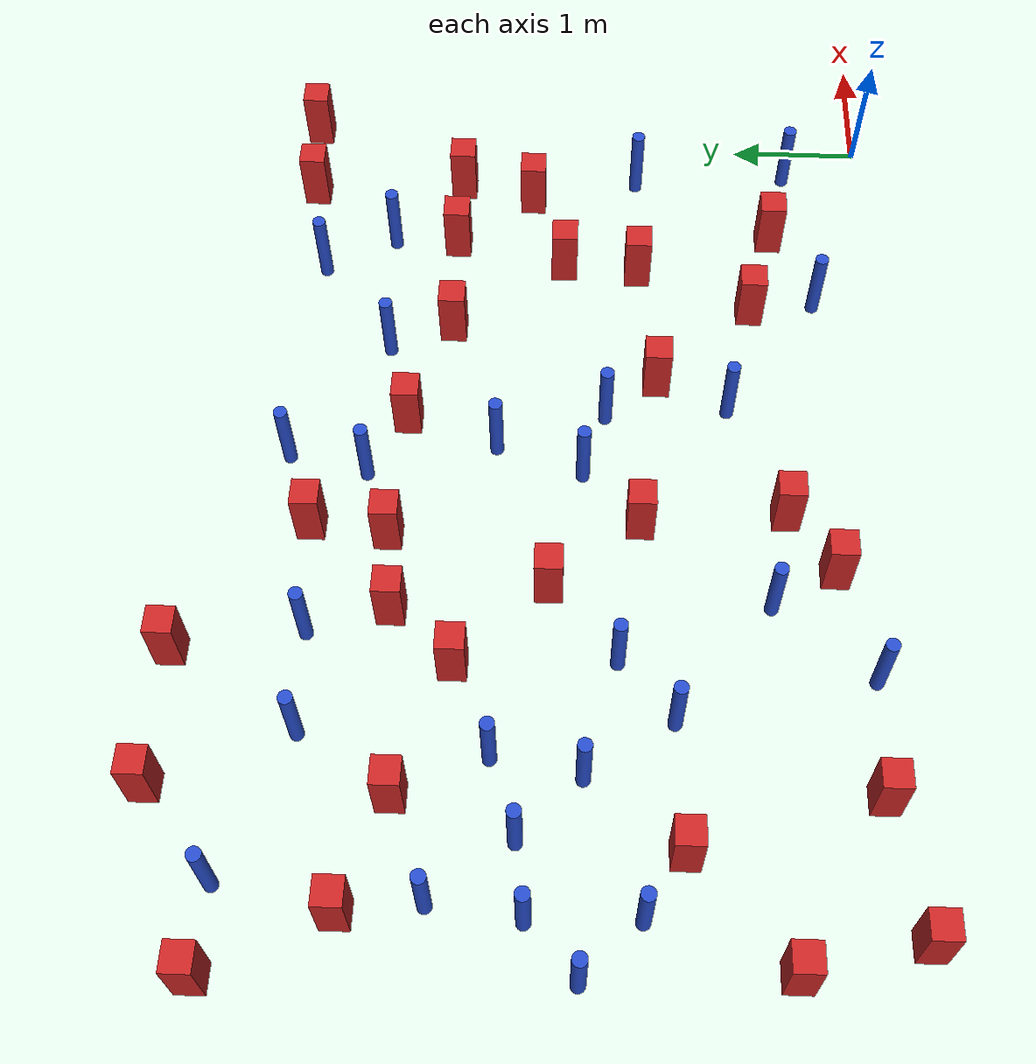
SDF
<sdf version="1.6">
 <model name="dense_21">
  <model name="square_post_obstacle0">
   <static>true</static>
   <pose>-3.86595991836 3.60557154821 1.91545236811e-07 -7.35059704564e-06 1.12565212e-07 2.39332434364e-05</pose>
   <link name="link">
    <pose>0 0 0.25 0 -0 0</pose>
    <inertial>
     <mass>100</mass>
     <inertia>
      <ixx>0.166667</ixx>
      <ixy>0</ixy>
      <ixz>0</ixz>
      <iyy>0.166667</iyy>
      <iyz>0</iyz>
      <izz>0.166667</izz>
     </inertia>
    </inertial>
    <collision name="collision"><geometry><box><size>.2 .2 .5</size></box></geometry></collision>
    <visual name="visual">
     <geometry><box><size>.2 .2 .5</size></box></geometry>
     <material>
      <script><name>Gazebo/Red</name><uri>file://media/materials/scripts/gazebo.material</uri></script>
     </material>
    </visual>
   </link>
  </model>
  <model name="pole_obstacle8">
   <static>true</static>
   <pose>-2.78137259823 2.06912645581 7.38925637345e-09 -8.47170692798e-08 1.24976764939e-08 -1.74513093025e-07</pose>
   <link name="link">
    <pose>0 0 0.3 0 -0 0</pose>
    <inertial>
     <mass>1</mass>
     <inertia><ixx>0.145833</ixx><ixy>0</ixy><ixz>0</ixz><iyy>0.145833</iyy><iyz>0</iyz><izz>0.125</izz></inertia>
    </inertial>
    <collision name="collision">
     <geometry><cylinder><radius>0.05</radius><length>.6</length></cylinder></geometry>
    </collision>
    <visual name="visual">
     <geometry><cylinder><radius>0.05</radius><length>.6</length></cylinder></geometry>
     <material>
      <script><name>Gazebo/Blue</name><uri>file://media/materials/scripts/gazebo.material</uri></script>
     </material>
    </visual>
   </link>
  </model>
  <model name="pole_obstacle11">
   <static>true</static>
   <pose>-0.41434500545 1.84749491106 7.38925637345e-09 -8.47170692798e-08 1.24976765025e-08 -1.74513093018e-07</pose>
   <link name="link">
    <pose>0 0 0.3 0 -0 0</pose>
    <inertial>
     <mass>1</mass>
     <inertia><ixx>0.145833</ixx><ixy>0</ixy><ixz>0</ixz><iyy>0.145833</iyy><iyz>0</iyz><izz>0.125</izz></inertia>
    </inertial>
    <collision name="collision">
     <geometry><cylinder><radius>0.05</radius><length>.6</length></cylinder></geometry>
    </collision>
    <visual name="visual">
     <geometry><cylinder><radius>0.05</radius><length>.6</length></cylinder></geometry>
     <material>
      <script><name>Gazebo/Blue</name><uri>file://media/materials/scripts/gazebo.material</uri></script>
     </material>
    </visual>
   </link>
  </model>
  <model name="square_post_obstacle22">
   <static>true</static>
   <pose>-5.79366301867 5.0144817991 1.91545236811e-07 -7.35059704564e-06 1.12565212e-07 2.39332434364e-05</pose>
   <link name="link">
    <pose>0 0 0.25 0 -0 0</pose>
    <inertial>
     <mass>100</mass>
     <inertia>
      <ixx>0.166667</ixx>
      <ixy>0</ixy>
      <ixz>0</ixz>
      <iyy>0.166667</iyy>
      <iyz>0</iyz>
      <izz>0.166667</izz>
     </inertia>
    </inertial>
    <collision name="collision"><geometry><box><size>.2 .2 .5</size></box></geometry></collision>
    <visual name="visual">
     <geometry><box><size>.2 .2 .5</size></box></geometry>
     <material>
      <script><name>Gazebo/Red</name><uri>file://media/materials/scripts/gazebo.material</uri></script>
     </material>
    </visual>
   </link>
  </model>
  <model name="pole_obstacle21">
   <static>true</static>
   <pose>-6.55348744013 1.78004425009 7.38925637345e-09 -8.471706928e-08 1.24976765134e-08 -1.74513093015e-07</pose>
   <link name="link">
    <pose>0 0 0.3 0 -0 0</pose>
    <inertial>
     <mass>1</mass>
     <inertia><ixx>0.145833</ixx><ixy>0</ixy><ixz>0</ixz><iyy>0.145833</iyy><iyz>0</iyz><izz>0.125</izz></inertia>
    </inertial>
    <collision name="collision">
     <geometry><cylinder><radius>0.05</radius><length>.6</length></cylinder></geometry>
    </collision>
    <visual name="visual">
     <geometry><cylinder><radius>0.05</radius><length>.6</length></cylinder></geometry>
     <material>
      <script><name>Gazebo/Blue</name><uri>file://media/materials/scripts/gazebo.material</uri></script>
     </material>
    </visual>
   </link>
  </model>
  <model name="square_post_obstacle33">
   <static>true</static>
   <pose>-0.62941892189 2.68996855208 1.91545236811e-07 -7.35059704564e-06 1.12565212e-07 2.39332434364e-05</pose>
   <link name="link">
    <pose>0 0 0.25 0 -0 0</pose>
    <inertial>
     <mass>100</mass>
     <inertia>
      <ixx>0.166667</ixx>
      <ixy>0</ixy>
      <ixz>0</ixz>
      <iyy>0.166667</iyy>
      <iyz>0</iyz>
      <izz>0.166667</izz>
     </inertia>
    </inertial>
    <collision name="collision"><geometry><box><size>.2 .2 .5</size></box></geometry></collision>
    <visual name="visual">
     <geometry><box><size>.2 .2 .5</size></box></geometry>
     <material>
      <script><name>Gazebo/Red</name><uri>file://media/materials/scripts/gazebo.material</uri></script>
     </material>
    </visual>
   </link>
  </model>
  <model name="pole_obstacle29">
   <static>true</static>
   <pose>-2.19478694647 3.73792876518 7.38925637345e-09 -8.47170692798e-08 1.24976764939e-08 -1.74513093025e-07</pose>
   <link name="link">
    <pose>0 0 0.3 0 -0 0</pose>
    <inertial>
     <mass>1</mass>
     <inertia><ixx>0.145833</ixx><ixy>0</ixy><ixz>0</ixz><iyy>0.145833</iyy><iyz>0</iyz><izz>0.125</izz></inertia>
    </inertial>
    <collision name="collision">
     <geometry><cylinder><radius>0.05</radius><length>.6</length></cylinder></geometry>
    </collision>
    <visual name="visual">
     <geometry><cylinder><radius>0.05</radius><length>.6</length></cylinder></geometry>
     <material>
      <script><name>Gazebo/Blue</name><uri>file://media/materials/scripts/gazebo.material</uri></script>
     </material>
    </visual>
   </link>
  </model>
  <model name="pole_obstacle32">
   <static>true</static>
   <pose>-1.10701310764 3.78948826834 7.38925637345e-09 -8.47170692799e-08 1.24976765053e-08 -1.74513093017e-07</pose>
   <link name="link">
    <pose>0 0 0.3 0 -0 0</pose>
    <inertial>
     <mass>1</mass>
     <inertia><ixx>0.145833</ixx><ixy>0</ixy><ixz>0</ixz><iyy>0.145833</iyy><iyz>0</iyz><izz>0.125</izz></inertia>
    </inertial>
    <collision name="collision">
     <geometry><cylinder><radius>0.05</radius><length>.6</length></cylinder></geometry>
    </collision>
    <visual name="visual">
     <geometry><cylinder><radius>0.05</radius><length>.6</length></cylinder></geometry>
     <material>
      <script><name>Gazebo/Blue</name><uri>file://media/materials/scripts/gazebo.material</uri></script>
     </material>
    </visual>
   </link>
  </model>
  <model name="square_post_obstacle38">
   <static>true</static>
   <pose>-6.63923074529 0.0228386776194 1.91545236811e-07 -7.35059704564e-06 1.12565212e-07 2.39332434364e-05</pose>
   <link name="link">
    <pose>0 0 0.25 0 -0 0</pose>
    <inertial>
     <mass>100</mass>
     <inertia>
      <ixx>0.166667</ixx>
      <ixy>0</ixy>
      <ixz>0</ixz>
      <iyy>0.166667</iyy>
      <iyz>0</iyz>
      <izz>0.166667</izz>
     </inertia>
    </inertial>
    <collision name="collision"><geometry><box><size>.2 .2 .5</size></box></geometry></collision>
    <visual name="visual">
     <geometry><box><size>.2 .2 .5</size></box></geometry>
     <material>
      <script><name>Gazebo/Red</name><uri>file://media/materials/scripts/gazebo.material</uri></script>
     </material>
    </visual>
   </link>
  </model>
  <model name="square_post_obstacle40">
   <static>true</static>
   <pose>-6.85556319978 0.843686910048 1.91545236811e-07 -7.35059704564e-06 1.12565212e-07 2.39332434364e-05</pose>
   <link name="link">
    <pose>0 0 0.25 0 -0 0</pose>
    <inertial>
     <mass>100</mass>
     <inertia>
      <ixx>0.166667</ixx>
      <ixy>0</ixy>
      <ixz>0</ixz>
      <iyy>0.166667</iyy>
      <iyz>0</iyz>
      <izz>0.166667</izz>
     </inertia>
    </inertial>
    <collision name="collision"><geometry><box><size>.2 .2 .5</size></box></geometry></collision>
    <visual name="visual">
     <geometry><box><size>.2 .2 .5</size></box></geometry>
     <material>
      <script><name>Gazebo/Red</name><uri>file://media/materials/scripts/gazebo.material</uri></script>
     </material>
    </visual>
   </link>
  </model>
  <model name="square_post_obstacle44">
   <static>true</static>
   <pose>-1.33822657588 2.41501504612 1.91545236811e-07 -7.35059704564e-06 1.12565212e-07 2.39332434364e-05</pose>
   <link name="link">
    <pose>0 0 0.25 0 -0 0</pose>
    <inertial>
     <mass>100</mass>
     <inertia>
      <ixx>0.166667</ixx>
      <ixy>0</ixy>
      <ixz>0</ixz>
      <iyy>0.166667</iyy>
      <iyz>0</iyz>
      <izz>0.166667</izz>
     </inertia>
    </inertial>
    <collision name="collision"><geometry><box><size>.2 .2 .5</size></box></geometry></collision>
    <visual name="visual">
     <geometry><box><size>.2 .2 .5</size></box></geometry>
     <material>
      <script><name>Gazebo/Red</name><uri>file://media/materials/scripts/gazebo.material</uri></script>
     </material>
    </visual>
   </link>
  </model>
  <model name="square_post_obstacle45">
   <static>true</static>
   <pose>-5.71500904995 0.223357686886 1.91545236811e-07 -7.35059704564e-06 1.12565212e-07 2.39332434364e-05</pose>
   <link name="link">
    <pose>0 0 0.25 0 -0 0</pose>
    <inertial>
     <mass>100</mass>
     <inertia>
      <ixx>0.166667</ixx>
      <ixy>0</ixy>
      <ixz>0</ixz>
      <iyy>0.166667</iyy>
      <iyz>0</iyz>
      <izz>0.166667</izz>
     </inertia>
    </inertial>
    <collision name="collision"><geometry><box><size>.2 .2 .5</size></box></geometry></collision>
    <visual name="visual">
     <geometry><box><size>.2 .2 .5</size></box></geometry>
     <material>
      <script><name>Gazebo/Red</name><uri>file://media/materials/scripts/gazebo.material</uri></script>
     </material>
    </visual>
   </link>
  </model>
  <model name="square_post_obstacle51">
   <static>true</static>
   <pose>-3.61294775484 0.757065930707 1.91545236811e-07 -7.35059704564e-06 1.12565212e-07 2.39332434364e-05</pose>
   <link name="link">
    <pose>0 0 0.25 0 -0 0</pose>
    <inertial>
     <mass>100</mass>
     <inertia>
      <ixx>0.166667</ixx>
      <ixy>0</ixy>
      <ixz>0</ixz>
      <iyy>0.166667</iyy>
      <iyz>0</iyz>
      <izz>0.166667</izz>
     </inertia>
    </inertial>
    <collision name="collision"><geometry><box><size>.2 .2 .5</size></box></geometry></collision>
    <visual name="visual">
     <geometry><box><size>.2 .2 .5</size></box></geometry>
     <material>
      <script><name>Gazebo/Red</name><uri>file://media/materials/scripts/gazebo.material</uri></script>
     </material>
    </visual>
   </link>
  </model>
  <model name="pole_obstacle54">
   <static>true</static>
   <pose>-0.306814135522 0.618455624702 7.38925637345e-09 -8.47170692799e-08 1.24976765033e-08 -1.74513093019e-07</pose>
   <link name="link">
    <pose>0 0 0.3 0 -0 0</pose>
    <inertial>
     <mass>1</mass>
     <inertia><ixx>0.145833</ixx><ixy>0</ixy><ixz>0</ixz><iyy>0.145833</iyy><iyz>0</iyz><izz>0.125</izz></inertia>
    </inertial>
    <collision name="collision">
     <geometry><cylinder><radius>0.05</radius><length>.6</length></cylinder></geometry>
    </collision>
    <visual name="visual">
     <geometry><cylinder><radius>0.05</radius><length>.6</length></cylinder></geometry>
     <material>
      <script><name>Gazebo/Blue</name><uri>file://media/materials/scripts/gazebo.material</uri></script>
     </material>
    </visual>
   </link>
  </model>
  <model name="square_post_obstacle60">
   <static>true</static>
   <pose>-2.86058432693 3.54175151519 1.91545236811e-07 -7.35059704564e-06 1.12565212e-07 2.39332434364e-05</pose>
   <link name="link">
    <pose>0 0 0.25 0 -0 0</pose>
    <inertial>
     <mass>100</mass>
     <inertia>
      <ixx>0.166667</ixx>
      <ixy>0</ixy>
      <ixz>0</ixz>
      <iyy>0.166667</iyy>
      <iyz>0</iyz>
      <izz>0.166667</izz>
     </inertia>
    </inertial>
    <collision name="collision"><geometry><box><size>.2 .2 .5</size></box></geometry></collision>
    <visual name="visual">
     <geometry><box><size>.2 .2 .5</size></box></geometry>
     <material>
      <script><name>Gazebo/Red</name><uri>file://media/materials/scripts/gazebo.material</uri></script>
     </material>
    </visual>
   </link>
  </model>
  <model name="pole_obstacle58">
   <static>true</static>
   <pose>-6.50039643059 3.14335249253 7.38925637345e-09 -8.47170692798e-08 1.24976764937e-08 -1.74513093023e-07</pose>
   <link name="link">
    <pose>0 0 0.3 0 -0 0</pose>
    <inertial>
     <mass>1</mass>
     <inertia><ixx>0.145833</ixx><ixy>0</ixy><ixz>0</ixz><iyy>0.145833</iyy><iyz>0</iyz><izz>0.125</izz></inertia>
    </inertial>
    <collision name="collision">
     <geometry><cylinder><radius>0.05</radius><length>.6</length></cylinder></geometry>
    </collision>
    <visual name="visual">
     <geometry><cylinder><radius>0.05</radius><length>.6</length></cylinder></geometry>
     <material>
      <script><name>Gazebo/Blue</name><uri>file://media/materials/scripts/gazebo.material</uri></script>
     </material>
    </visual>
   </link>
  </model>
  <model name="square_post_obstacle71">
   <static>true</static>
   <pose>-4.86969786584 3.07626681974 1.91545236811e-07 -7.35059704564e-06 1.12565212e-07 2.39332434364e-05</pose>
   <link name="link">
    <pose>0 0 0.25 0 -0 0</pose>
    <inertial>
     <mass>100</mass>
     <inertia>
      <ixx>0.166667</ixx>
      <ixy>0</ixy>
      <ixz>0</ixz>
      <iyy>0.166667</iyy>
      <iyz>0</iyz>
      <izz>0.166667</izz>
     </inertia>
    </inertial>
    <collision name="collision"><geometry><box><size>.2 .2 .5</size></box></geometry></collision>
    <visual name="visual">
     <geometry><box><size>.2 .2 .5</size></box></geometry>
     <material>
      <script><name>Gazebo/Red</name><uri>file://media/materials/scripts/gazebo.material</uri></script>
     </material>
    </visual>
   </link>
  </model>
  <model name="pole_obstacle89">
   <static>true</static>
   <pose>-6.07810839489 2.59719397885 7.38925637345e-09 -8.47170692798e-08 1.24976764937e-08 -1.74513093023e-07</pose>
   <link name="link">
    <pose>0 0 0.3 0 -0 0</pose>
    <inertial>
     <mass>1</mass>
     <inertia><ixx>0.145833</ixx><ixy>0</ixy><ixz>0</ixz><iyy>0.145833</iyy><iyz>0</iyz><izz>0.125</izz></inertia>
    </inertial>
    <collision name="collision">
     <geometry><cylinder><radius>0.05</radius><length>.6</length></cylinder></geometry>
    </collision>
    <visual name="visual">
     <geometry><cylinder><radius>0.05</radius><length>.6</length></cylinder></geometry>
     <material>
      <script><name>Gazebo/Blue</name><uri>file://media/materials/scripts/gazebo.material</uri></script>
     </material>
    </visual>
   </link>
  </model>
  <model name="pole_obstacle90">
   <static>true</static>
   <pose>-4.88486015319 0.196753515784 7.38925637345e-09 -8.471706928e-08 1.24976765151e-08 -1.74513093014e-07</pose>
   <link name="link">
    <pose>0 0 0.3 0 -0 0</pose>
    <inertial>
     <mass>1</mass>
     <inertia><ixx>0.145833</ixx><ixy>0</ixy><ixz>0</ixz><iyy>0.145833</iyy><iyz>0</iyz><izz>0.125</izz></inertia>
    </inertial>
    <collision name="collision">
     <geometry><cylinder><radius>0.05</radius><length>.6</length></cylinder></geometry>
    </collision>
    <visual name="visual">
     <geometry><cylinder><radius>0.05</radius><length>.6</length></cylinder></geometry>
     <material>
      <script><name>Gazebo/Blue</name><uri>file://media/materials/scripts/gazebo.material</uri></script>
     </material>
    </visual>
   </link>
  </model>
  <model name="pole_obstacle94">
   <static>true</static>
   <pose>-5.39001507004 4.07851157593 7.38925637345e-09 -8.47170692796e-08 1.24976764786e-08 -1.74513093032e-07</pose>
   <link name="link">
    <pose>0 0 0.3 0 -0 0</pose>
    <inertial>
     <mass>1</mass>
     <inertia><ixx>0.145833</ixx><ixy>0</ixy><ixz>0</ixz><iyy>0.145833</iyy><iyz>0</iyz><izz>0.125</izz></inertia>
    </inertial>
    <collision name="collision">
     <geometry><cylinder><radius>0.05</radius><length>.6</length></cylinder></geometry>
    </collision>
    <visual name="visual">
     <geometry><cylinder><radius>0.05</radius><length>.6</length></cylinder></geometry>
     <material>
      <script><name>Gazebo/Blue</name><uri>file://media/materials/scripts/gazebo.material</uri></script>
     </material>
    </visual>
   </link>
  </model>
  <model name="square_post_obstacle90">
   <static>true</static>
   <pose>-1.98172330749 3.25984380256 1.91545236811e-07 -7.35059704564e-06 1.12565212e-07 2.39332434364e-05</pose>
   <link name="link">
    <pose>0 0 0.25 0 -0 0</pose>
    <inertial>
     <mass>100</mass>
     <inertia>
      <ixx>0.166667</ixx>
      <ixy>0</ixy>
      <ixz>0</ixz>
      <iyy>0.166667</iyy>
      <iyz>0</iyz>
      <izz>0.166667</izz>
     </inertia>
    </inertial>
    <collision name="collision"><geometry><box><size>.2 .2 .5</size></box></geometry></collision>
    <visual name="visual">
     <geometry><box><size>.2 .2 .5</size></box></geometry>
     <material>
      <script><name>Gazebo/Red</name><uri>file://media/materials/scripts/gazebo.material</uri></script>
     </material>
    </visual>
   </link>
  </model>
  <model name="pole_obstacle107">
   <static>true</static>
   <pose>-4.34851654881 0.886905893965 7.38925637345e-09 -8.47170692799e-08 1.24976765038e-08 -1.74513093018e-07</pose>
   <link name="link">
    <pose>0 0 0.3 0 -0 0</pose>
    <inertial>
     <mass>1</mass>
     <inertia><ixx>0.145833</ixx><ixy>0</ixy><ixz>0</ixz><iyy>0.145833</iyy><iyz>0</iyz><izz>0.125</izz></inertia>
    </inertial>
    <collision name="collision">
     <geometry><cylinder><radius>0.05</radius><length>.6</length></cylinder></geometry>
    </collision>
    <visual name="visual">
     <geometry><cylinder><radius>0.05</radius><length>.6</length></cylinder></geometry>
     <material>
      <script><name>Gazebo/Blue</name><uri>file://media/materials/scripts/gazebo.material</uri></script>
     </material>
    </visual>
   </link>
  </model>
  <model name="square_post_obstacle95">
   <static>true</static>
   <pose>-3.71858230035 1.80594368579 1.91545236811e-07 -7.35059704564e-06 1.12565212e-07 2.39332434364e-05</pose>
   <link name="link">
    <pose>0 0 0.25 0 -0 0</pose>
    <inertial>
     <mass>100</mass>
     <inertia>
      <ixx>0.166667</ixx>
      <ixy>0</ixy>
      <ixz>0</ixz>
      <iyy>0.166667</iyy>
      <iyz>0</iyz>
      <izz>0.166667</izz>
     </inertia>
    </inertial>
    <collision name="collision"><geometry><box><size>.2 .2 .5</size></box></geometry></collision>
    <visual name="visual">
     <geometry><box><size>.2 .2 .5</size></box></geometry>
     <material>
      <script><name>Gazebo/Red</name><uri>file://media/materials/scripts/gazebo.material</uri></script>
     </material>
    </visual>
   </link>
  </model>
  <model name="pole_obstacle109">
   <static>true</static>
   <pose>-5.23086947961 1.56839969151 7.38925637345e-09 -8.471706928e-08 1.24976765134e-08 -1.74513093015e-07</pose>
   <link name="link">
    <pose>0 0 0.3 0 -0 0</pose>
    <inertial>
     <mass>1</mass>
     <inertia><ixx>0.145833</ixx><ixy>0</ixy><ixz>0</ixz><iyy>0.145833</iyy><iyz>0</iyz><izz>0.125</izz></inertia>
    </inertial>
    <collision name="collision">
     <geometry><cylinder><radius>0.05</radius><length>.6</length></cylinder></geometry>
    </collision>
    <visual name="visual">
     <geometry><cylinder><radius>0.05</radius><length>.6</length></cylinder></geometry>
     <material>
      <script><name>Gazebo/Blue</name><uri>file://media/materials/scripts/gazebo.material</uri></script>
     </material>
    </visual>
   </link>
  </model>
  <model name="square_post_obstacle97">
   <static>true</static>
   <pose>-0.485385563064 3.2686350951 1.91545236811e-07 -7.35059704564e-06 1.12565212e-07 2.39332434364e-05</pose>
   <link name="link">
    <pose>0 0 0.25 0 -0 0</pose>
    <inertial>
     <mass>100</mass>
     <inertia>
      <ixx>0.166667</ixx>
      <ixy>0</ixy>
      <ixz>0</ixz>
      <iyy>0.166667</iyy>
      <iyz>0</iyz>
      <izz>0.166667</izz>
     </inertia>
    </inertial>
    <collision name="collision"><geometry><box><size>.2 .2 .5</size></box></geometry></collision>
    <visual name="visual">
     <geometry><box><size>.2 .2 .5</size></box></geometry>
     <material>
      <script><name>Gazebo/Red</name><uri>file://media/materials/scripts/gazebo.material</uri></script>
     </material>
    </visual>
   </link>
  </model>
  <model name="pole_obstacle124">
   <static>true</static>
   <pose>-5.64075008194 2.17287120768 7.38925637345e-09 -8.47170692798e-08 1.24976764937e-08 -1.74513093023e-07</pose>
   <link name="link">
    <pose>0 0 0.3 0 -0 0</pose>
    <inertial>
     <mass>1</mass>
     <inertia><ixx>0.145833</ixx><ixy>0</ixy><ixz>0</ixz><iyy>0.145833</iyy><iyz>0</iyz><izz>0.125</izz></inertia>
    </inertial>
    <collision name="collision">
     <geometry><cylinder><radius>0.05</radius><length>.6</length></cylinder></geometry>
    </collision>
    <visual name="visual">
     <geometry><cylinder><radius>0.05</radius><length>.6</length></cylinder></geometry>
     <material>
      <script><name>Gazebo/Blue</name><uri>file://media/materials/scripts/gazebo.material</uri></script>
     </material>
    </visual>
   </link>
  </model>
  <model name="pole_obstacle127">
   <static>true</static>
   <pose>-5.52030269205 2.79116916985 7.38925637345e-09 -8.47170692798e-08 1.24976764937e-08 -1.74513093023e-07</pose>
   <link name="link">
    <pose>0 0 0.3 0 -0 0</pose>
    <inertial>
     <mass>1</mass>
     <inertia><ixx>0.145833</ixx><ixy>0</ixy><ixz>0</ixz><iyy>0.145833</iyy><iyz>0</iyz><izz>0.125</izz></inertia>
    </inertial>
    <collision name="collision">
     <geometry><cylinder><radius>0.05</radius><length>.6</length></cylinder></geometry>
    </collision>
    <visual name="visual">
     <geometry><cylinder><radius>0.05</radius><length>.6</length></cylinder></geometry>
     <material>
      <script><name>Gazebo/Blue</name><uri>file://media/materials/scripts/gazebo.material</uri></script>
     </material>
    </visual>
   </link>
  </model>
  <model name="pole_obstacle132">
   <static>true</static>
   <pose>-3.21013823152 4.39571737718 7.38925637345e-09 -8.47170692798e-08 1.24976765033e-08 -1.74513093019e-07</pose>
   <link name="link">
    <pose>0 0 0.3 0 -0 0</pose>
    <inertial>
     <mass>1</mass>
     <inertia><ixx>0.145833</ixx><ixy>0</ixy><ixz>0</ixz><iyy>0.145833</iyy><iyz>0</iyz><izz>0.125</izz></inertia>
    </inertial>
    <collision name="collision">
     <geometry><cylinder><radius>0.05</radius><length>.6</length></cylinder></geometry>
    </collision>
    <visual name="visual">
     <geometry><cylinder><radius>0.05</radius><length>.6</length></cylinder></geometry>
     <material>
      <script><name>Gazebo/Blue</name><uri>file://media/materials/scripts/gazebo.material</uri></script>
     </material>
    </visual>
   </link>
  </model>
  <model name="pole_obstacle135">
   <static>true</static>
   <pose>-3.29960236184 2.22583665025 7.38925637345e-09 -8.471706928e-08 1.24976765098e-08 -1.74513093016e-07</pose>
   <link name="link">
    <pose>0 0 0.3 0 -0 0</pose>
    <inertial>
     <mass>1</mass>
     <inertia><ixx>0.145833</ixx><ixy>0</ixy><ixz>0</ixz><iyy>0.145833</iyy><iyz>0</iyz><izz>0.125</izz></inertia>
    </inertial>
    <collision name="collision">
     <geometry><cylinder><radius>0.05</radius><length>.6</length></cylinder></geometry>
    </collision>
    <visual name="visual">
     <geometry><cylinder><radius>0.05</radius><length>.6</length></cylinder></geometry>
     <material>
      <script><name>Gazebo/Blue</name><uri>file://media/materials/scripts/gazebo.material</uri></script>
     </material>
    </visual>
   </link>
  </model>
  <model name="square_post_obstacle118">
   <static>true</static>
   <pose>-4.82078689809 5.00561105637 1.91545236811e-07 -7.35059704564e-06 1.12565212e-07 2.39332434364e-05</pose>
   <link name="link">
    <pose>0 0 0.25 0 -0 0</pose>
    <inertial>
     <mass>100</mass>
     <inertia>
      <ixx>0.166667</ixx>
      <ixy>0</ixy>
      <ixz>0</ixz>
      <iyy>0.166667</iyy>
      <iyz>0</iyz>
      <izz>0.166667</izz>
     </inertia>
    </inertial>
    <collision name="collision"><geometry><box><size>.2 .2 .5</size></box></geometry></collision>
    <visual name="visual">
     <geometry><box><size>.2 .2 .5</size></box></geometry>
     <material>
      <script><name>Gazebo/Red</name><uri>file://media/materials/scripts/gazebo.material</uri></script>
     </material>
    </visual>
   </link>
  </model>
  <model name="square_post_obstacle119">
   <static>true</static>
   <pose>-3.80180215612 4.16481056923 1.91545236811e-07 -7.35059704564e-06 1.12565212e-07 2.39332434364e-05</pose>
   <link name="link">
    <pose>0 0 0.25 0 -0 0</pose>
    <inertial>
     <mass>100</mass>
     <inertia>
      <ixx>0.166667</ixx>
      <ixy>0</ixy>
      <ixz>0</ixz>
      <iyy>0.166667</iyy>
      <iyz>0</iyz>
      <izz>0.166667</izz>
     </inertia>
    </inertial>
    <collision name="collision"><geometry><box><size>.2 .2 .5</size></box></geometry></collision>
    <visual name="visual">
     <geometry><box><size>.2 .2 .5</size></box></geometry>
     <material>
      <script><name>Gazebo/Red</name><uri>file://media/materials/scripts/gazebo.material</uri></script>
     </material>
    </visual>
   </link>
  </model>
  <model name="square_post_obstacle120">
   <static>true</static>
   <pose>-4.46540278607 3.53071237787 1.91545236811e-07 -7.35059704564e-06 1.12565212e-07 2.39332434364e-05</pose>
   <link name="link">
    <pose>0 0 0.25 0 -0 0</pose>
    <inertial>
     <mass>100</mass>
     <inertia>
      <ixx>0.166667</ixx>
      <ixy>0</ixy>
      <ixz>0</ixz>
      <iyy>0.166667</iyy>
      <iyz>0</iyz>
      <izz>0.166667</izz>
     </inertia>
    </inertial>
    <collision name="collision"><geometry><box><size>.2 .2 .5</size></box></geometry></collision>
    <visual name="visual">
     <geometry><box><size>.2 .2 .5</size></box></geometry>
     <material>
      <script><name>Gazebo/Red</name><uri>file://media/materials/scripts/gazebo.material</uri></script>
     </material>
    </visual>
   </link>
  </model>
  <model name="square_post_obstacle126">
   <static>true</static>
   <pose>-1.7434710537 0.953801590971 1.91545236811e-07 -7.35059704564e-06 1.12565212e-07 2.39332434364e-05</pose>
   <link name="link">
    <pose>0 0 0.25 0 -0 0</pose>
    <inertial>
     <mass>100</mass>
     <inertia>
      <ixx>0.166667</ixx>
      <ixy>0</ixy>
      <ixz>0</ixz>
      <iyy>0.166667</iyy>
      <iyz>0</iyz>
      <izz>0.166667</izz>
     </inertia>
    </inertial>
    <collision name="collision"><geometry><box><size>.2 .2 .5</size></box></geometry></collision>
    <visual name="visual">
     <geometry><box><size>.2 .2 .5</size></box></geometry>
     <material>
      <script><name>Gazebo/Red</name><uri>file://media/materials/scripts/gazebo.material</uri></script>
     </material>
    </visual>
   </link>
  </model>
  <model name="pole_obstacle146">
   <static>true</static>
   <pose>-4.80376832508 1.95586070441 7.38925637345e-09 -8.471706928e-08 1.24976765177e-08 -1.74513093012e-07</pose>
   <link name="link">
    <pose>0 0 0.3 0 -0 0</pose>
    <inertial>
     <mass>1</mass>
     <inertia><ixx>0.145833</ixx><ixy>0</ixy><ixz>0</ixz><iyy>0.145833</iyy><iyz>0</iyz><izz>0.125</izz></inertia>
    </inertial>
    <collision name="collision">
     <geometry><cylinder><radius>0.05</radius><length>.6</length></cylinder></geometry>
    </collision>
    <visual name="visual">
     <geometry><cylinder><radius>0.05</radius><length>.6</length></cylinder></geometry>
     <material>
      <script><name>Gazebo/Blue</name><uri>file://media/materials/scripts/gazebo.material</uri></script>
     </material>
    </visual>
   </link>
  </model>
  <model name="pole_obstacle156">
   <static>true</static>
   <pose>-6.41359265644 4.494106197 7.38925637345e-09 -8.47170692796e-08 1.24976764786e-08 -1.74513093032e-07</pose>
   <link name="link">
    <pose>0 0 0.3 0 -0 0</pose>
    <inertial>
     <mass>1</mass>
     <inertia><ixx>0.145833</ixx><ixy>0</ixy><ixz>0</ixz><iyy>0.145833</iyy><iyz>0</iyz><izz>0.125</izz></inertia>
    </inertial>
    <collision name="collision">
     <geometry><cylinder><radius>0.05</radius><length>.6</length></cylinder></geometry>
    </collision>
    <visual name="visual">
     <geometry><cylinder><radius>0.05</radius><length>.6</length></cylinder></geometry>
     <material>
      <script><name>Gazebo/Blue</name><uri>file://media/materials/scripts/gazebo.material</uri></script>
     </material>
    </visual>
   </link>
  </model>
  <model name="square_post_obstacle150">
   <static>true</static>
   <pose>0.104401019979 4.53678349561 1.91545236811e-07 -7.35059704564e-06 1.12565212e-07 2.39332434364e-05</pose>
   <link name="link">
    <pose>0 0 0.25 0 -0 0</pose>
    <inertial>
     <mass>100</mass>
     <inertia>
      <ixx>0.166667</ixx>
      <ixy>0</ixy>
      <ixz>0</ixz>
      <iyy>0.166667</iyy>
      <iyz>0</iyz>
      <izz>0.166667</izz>
     </inertia>
    </inertial>
    <collision name="collision"><geometry><box><size>.2 .2 .5</size></box></geometry></collision>
    <visual name="visual">
     <geometry><box><size>.2 .2 .5</size></box></geometry>
     <material>
      <script><name>Gazebo/Red</name><uri>file://media/materials/scripts/gazebo.material</uri></script>
     </material>
    </visual>
   </link>
  </model>
  <model name="square_post_obstacle156">
   <static>true</static>
   <pose>-6.12395830026 1.5156468879 1.91545236811e-07 -7.35059704564e-06 1.12565212e-07 2.39332434364e-05</pose>
   <link name="link">
    <pose>0 0 0.25 0 -0 0</pose>
    <inertial>
     <mass>100</mass>
     <inertia>
      <ixx>0.166667</ixx>
      <ixy>0</ixy>
      <ixz>0</ixz>
      <iyy>0.166667</iyy>
      <iyz>0</iyz>
      <izz>0.166667</izz>
     </inertia>
    </inertial>
    <collision name="collision"><geometry><box><size>.2 .2 .5</size></box></geometry></collision>
    <visual name="visual">
     <geometry><box><size>.2 .2 .5</size></box></geometry>
     <material>
      <script><name>Gazebo/Red</name><uri>file://media/materials/scripts/gazebo.material</uri></script>
     </material>
    </visual>
   </link>
  </model>
  <model name="square_post_obstacle157">
   <static>true</static>
   <pose>-6.57234840411 3.68802549817 1.91545236811e-07 -7.35059704564e-06 1.12565212e-07 2.39332434364e-05</pose>
   <link name="link">
    <pose>0 0 0.25 0 -0 0</pose>
    <inertial>
     <mass>100</mass>
     <inertia>
      <ixx>0.166667</ixx>
      <ixy>0</ixy>
      <ixz>0</ixz>
      <iyy>0.166667</iyy>
      <iyz>0</iyz>
      <izz>0.166667</izz>
     </inertia>
    </inertial>
    <collision name="collision"><geometry><box><size>.2 .2 .5</size></box></geometry></collision>
    <visual name="visual">
     <geometry><box><size>.2 .2 .5</size></box></geometry>
     <material>
      <script><name>Gazebo/Red</name><uri>file://media/materials/scripts/gazebo.material</uri></script>
     </material>
    </visual>
   </link>
  </model>
  <model name="square_post_obstacle159">
   <static>true</static>
   <pose>-4.07350914103 0.431229910862 1.91545236811e-07 -7.35059704564e-06 1.12565212e-07 2.39332434364e-05</pose>
   <link name="link">
    <pose>0 0 0.25 0 -0 0</pose>
    <inertial>
     <mass>100</mass>
     <inertia>
      <ixx>0.166667</ixx>
      <ixy>0</ixy>
      <ixz>0</ixz>
      <iyy>0.166667</iyy>
      <iyz>0</iyz>
      <izz>0.166667</izz>
     </inertia>
    </inertial>
    <collision name="collision"><geometry><box><size>.2 .2 .5</size></box></geometry></collision>
    <visual name="visual">
     <geometry><box><size>.2 .2 .5</size></box></geometry>
     <material>
      <script><name>Gazebo/Red</name><uri>file://media/materials/scripts/gazebo.material</uri></script>
     </material>
    </visual>
   </link>
  </model>
  <model name="square_post_obstacle164">
   <static>true</static>
   <pose>-6.98697210703 4.5192453092 1.91545236811e-07 -7.35059704564e-06 1.12565212e-07 2.39332434364e-05</pose>
   <link name="link">
    <pose>0 0 0.25 0 -0 0</pose>
    <inertial>
     <mass>100</mass>
     <inertia>
      <ixx>0.166667</ixx>
      <ixy>0</ixy>
      <ixz>0</ixz>
      <iyy>0.166667</iyy>
      <iyz>0</iyz>
      <izz>0.166667</izz>
     </inertia>
    </inertial>
    <collision name="collision"><geometry><box><size>.2 .2 .5</size></box></geometry></collision>
    <visual name="visual">
     <geometry><box><size>.2 .2 .5</size></box></geometry>
     <material>
      <script><name>Gazebo/Red</name><uri>file://media/materials/scripts/gazebo.material</uri></script>
     </material>
    </visual>
   </link>
  </model>
  <model name="pole_obstacle178">
   <static>true</static>
   <pose>-1.41124363965 4.3278385688 7.38925637345e-09 -8.47170692799e-08 1.24976765033e-08 -1.74513093018e-07</pose>
   <link name="link">
    <pose>0 0 0.3 0 -0 0</pose>
    <inertial>
     <mass>1</mass>
     <inertia><ixx>0.145833</ixx><ixy>0</ixy><ixz>0</ixz><iyy>0.145833</iyy><iyz>0</iyz><izz>0.125</izz></inertia>
    </inertial>
    <collision name="collision">
     <geometry><cylinder><radius>0.05</radius><length>.6</length></cylinder></geometry>
    </collision>
    <visual name="visual">
     <geometry><cylinder><radius>0.05</radius><length>.6</length></cylinder></geometry>
     <material>
      <script><name>Gazebo/Blue</name><uri>file://media/materials/scripts/gazebo.material</uri></script>
     </material>
    </visual>
   </link>
  </model>
  <model name="square_post_obstacle174">
   <static>true</static>
   <pose>-0.588597129025 4.48532298802 1.91545236811e-07 -7.35059704564e-06 1.12565212e-07 2.39332434364e-05</pose>
   <link name="link">
    <pose>0 0 0.25 0 -0 0</pose>
    <inertial>
     <mass>100</mass>
     <inertia>
      <ixx>0.166667</ixx>
      <ixy>0</ixy>
      <ixz>0</ixz>
      <iyy>0.166667</iyy>
      <iyz>0</iyz>
      <izz>0.166667</izz>
     </inertia>
    </inertial>
    <collision name="collision"><geometry><box><size>.2 .2 .5</size></box></geometry></collision>
    <visual name="visual">
     <geometry><box><size>.2 .2 .5</size></box></geometry>
     <material>
      <script><name>Gazebo/Red</name><uri>file://media/materials/scripts/gazebo.material</uri></script>
     </material>
    </visual>
   </link>
  </model>
  <model name="square_post_obstacle177">
   <static>true</static>
   <pose>-1.38103212987 1.83550497154 1.91545236811e-07 -7.35059704564e-06 1.12565212e-07 2.39332434364e-05</pose>
   <link name="link">
    <pose>0 0 0.25 0 -0 0</pose>
    <inertial>
     <mass>100</mass>
     <inertia>
      <ixx>0.166667</ixx>
      <ixy>0</ixy>
      <ixz>0</ixz>
      <iyy>0.166667</iyy>
      <iyz>0</iyz>
      <izz>0.166667</izz>
     </inertia>
    </inertial>
    <collision name="collision"><geometry><box><size>.2 .2 .5</size></box></geometry></collision>
    <visual name="visual">
     <geometry><box><size>.2 .2 .5</size></box></geometry>
     <material>
      <script><name>Gazebo/Red</name><uri>file://media/materials/scripts/gazebo.material</uri></script>
     </material>
    </visual>
   </link>
  </model>
  <model name="square_post_obstacle180">
   <static>true</static>
   <pose>-1.11863178164 3.27913475068 1.91545236811e-07 -7.35059704564e-06 1.12565212e-07 2.39332434364e-05</pose>
   <link name="link">
    <pose>0 0 0.25 0 -0 0</pose>
    <inertial>
     <mass>100</mass>
     <inertia>
      <ixx>0.166667</ixx>
      <ixy>0</ixy>
      <ixz>0</ixz>
      <iyy>0.166667</iyy>
      <iyz>0</iyz>
      <izz>0.166667</izz>
     </inertia>
    </inertial>
    <collision name="collision"><geometry><box><size>.2 .2 .5</size></box></geometry></collision>
    <visual name="visual">
     <geometry><box><size>.2 .2 .5</size></box></geometry>
     <material>
      <script><name>Gazebo/Red</name><uri>file://media/materials/scripts/gazebo.material</uri></script>
     </material>
    </visual>
   </link>
  </model>
  <model name="square_post_obstacle182">
   <static>true</static>
   <pose>-2.45948258006 1.68646048146 1.91545236811e-07 -7.35059704564e-06 1.12565212e-07 2.39332434364e-05</pose>
   <link name="link">
    <pose>0 0 0.25 0 -0 0</pose>
    <inertial>
     <mass>100</mass>
     <inertia>
      <ixx>0.166667</ixx>
      <ixy>0</ixy>
      <ixz>0</ixz>
      <iyy>0.166667</iyy>
      <iyz>0</iyz>
      <izz>0.166667</izz>
     </inertia>
    </inertial>
    <collision name="collision"><geometry><box><size>.2 .2 .5</size></box></geometry></collision>
    <visual name="visual">
     <geometry><box><size>.2 .2 .5</size></box></geometry>
     <material>
      <script><name>Gazebo/Red</name><uri>file://media/materials/scripts/gazebo.material</uri></script>
     </material>
    </visual>
   </link>
  </model>
  <model name="square_post_obstacle187">
   <static>true</static>
   <pose>-0.9861824438 0.770317396739 1.91545236811e-07 -7.35059704564e-06 1.12565212e-07 2.39332434364e-05</pose>
   <link name="link">
    <pose>0 0 0.25 0 -0 0</pose>
    <inertial>
     <mass>100</mass>
     <inertia>
      <ixx>0.166667</ixx>
      <ixy>0</ixy>
      <ixz>0</ixz>
      <iyy>0.166667</iyy>
      <iyz>0</iyz>
      <izz>0.166667</izz>
     </inertia>
    </inertial>
    <collision name="collision"><geometry><box><size>.2 .2 .5</size></box></geometry></collision>
    <visual name="visual">
     <geometry><box><size>.2 .2 .5</size></box></geometry>
     <material>
      <script><name>Gazebo/Red</name><uri>file://media/materials/scripts/gazebo.material</uri></script>
     </material>
    </visual>
   </link>
  </model>
  <model name="square_post_obstacle193">
   <static>true</static>
   <pose>-5.80840645989 3.41423138902 1.91545236811e-07 -7.35059704564e-06 1.12565212e-07 2.39332434364e-05</pose>
   <link name="link">
    <pose>0 0 0.25 0 -0 0</pose>
    <inertial>
     <mass>100</mass>
     <inertia>
      <ixx>0.166667</ixx>
      <ixy>0</ixy>
      <ixz>0</ixz>
      <iyy>0.166667</iyy>
      <iyz>0</iyz>
      <izz>0.166667</izz>
     </inertia>
    </inertial>
    <collision name="collision"><geometry><box><size>.2 .2 .5</size></box></geometry></collision>
    <visual name="visual">
     <geometry><box><size>.2 .2 .5</size></box></geometry>
     <material>
      <script><name>Gazebo/Red</name><uri>file://media/materials/scripts/gazebo.material</uri></script>
     </material>
    </visual>
   </link>
  </model>
  <model name="square_post_obstacle198">
   <static>true</static>
   <pose>-4.25337391084 2.44499710554 1.91545236811e-07 -7.35059704564e-06 1.12565212e-07 2.39332434364e-05</pose>
   <link name="link">
    <pose>0 0 0.25 0 -0 0</pose>
    <inertial>
     <mass>100</mass>
     <inertia>
      <ixx>0.166667</ixx>
      <ixy>0</ixy>
      <ixz>0</ixz>
      <iyy>0.166667</iyy>
      <iyz>0</iyz>
      <izz>0.166667</izz>
     </inertia>
    </inertial>
    <collision name="collision"><geometry><box><size>.2 .2 .5</size></box></geometry></collision>
    <visual name="visual">
     <geometry><box><size>.2 .2 .5</size></box></geometry>
     <material>
      <script><name>Gazebo/Red</name><uri>file://media/materials/scripts/gazebo.material</uri></script>
     </material>
    </visual>
   </link>
  </model>
  <model name="pole_obstacle192">
   <static>true</static>
   <pose>-4.65066480137 4.10591743107 7.38925637345e-09 -8.47170692796e-08 1.24976764786e-08 -1.74513093032e-07</pose>
   <link name="link">
    <pose>0 0 0.3 0 -0 0</pose>
    <inertial>
     <mass>1</mass>
     <inertia><ixx>0.145833</ixx><ixy>0</ixy><ixz>0</ixz><iyy>0.145833</iyy><iyz>0</iyz><izz>0.125</izz></inertia>
    </inertial>
    <collision name="collision">
     <geometry><cylinder><radius>0.05</radius><length>.6</length></cylinder></geometry>
    </collision>
    <visual name="visual">
     <geometry><cylinder><radius>0.05</radius><length>.6</length></cylinder></geometry>
     <material>
      <script><name>Gazebo/Blue</name><uri>file://media/materials/scripts/gazebo.material</uri></script>
     </material>
    </visual>
   </link>
  </model>
  <model name="pole_obstacle200">
   <static>true</static>
   <pose>-1.65393227819 0.44536225254 7.38925637345e-09 -8.47170692799e-08 1.24976765065e-08 -1.74513093017e-07</pose>
   <link name="link">
    <pose>0 0 0.3 0 -0 0</pose>
    <inertial>
     <mass>1</mass>
     <inertia><ixx>0.145833</ixx><ixy>0</ixy><ixz>0</ixz><iyy>0.145833</iyy><iyz>0</iyz><izz>0.125</izz></inertia>
    </inertial>
    <collision name="collision">
     <geometry><cylinder><radius>0.05</radius><length>.6</length></cylinder></geometry>
    </collision>
    <visual name="visual">
     <geometry><cylinder><radius>0.05</radius><length>.6</length></cylinder></geometry>
     <material>
      <script><name>Gazebo/Blue</name><uri>file://media/materials/scripts/gazebo.material</uri></script>
     </material>
    </visual>
   </link>
  </model>
  <model name="pole_obstacle205">
   <static>true</static>
   <pose>-6.58068999043 2.52291002078 7.38925637345e-09 -8.47170692799e-08 1.24976765028e-08 -1.74513093019e-07</pose>
   <link name="link">
    <pose>0 0 0.3 0 -0 0</pose>
    <inertial>
     <mass>1</mass>
     <inertia><ixx>0.145833</ixx><ixy>0</ixy><ixz>0</ixz><iyy>0.145833</iyy><iyz>0</iyz><izz>0.125</izz></inertia>
    </inertial>
    <collision name="collision">
     <geometry><cylinder><radius>0.05</radius><length>.6</length></cylinder></geometry>
    </collision>
    <visual name="visual">
     <geometry><cylinder><radius>0.05</radius><length>.6</length></cylinder></geometry>
     <material>
      <script><name>Gazebo/Blue</name><uri>file://media/materials/scripts/gazebo.material</uri></script>
     </material>
    </visual>
   </link>
  </model>
  <model name="pole_obstacle207">
   <static>true</static>
   <pose>-2.69565999043 1.15043002078 7.38925637345e-09 -8.471706928e-08 1.24976765152e-08 -1.74513093012e-07</pose>
   <link name="link">
    <pose>0 0 0.3 0 -0 0</pose>
    <inertial>
     <mass>1</mass>
     <inertia><ixx>0.145833</ixx><ixy>0</ixy><ixz>0</ixz><iyy>0.145833</iyy><iyz>0</iyz><izz>0.125</izz></inertia>
    </inertial>
    <collision name="collision">
     <geometry><cylinder><radius>0.05</radius><length>.6</length></cylinder></geometry>
    </collision>
    <visual name="visual">
     <geometry><cylinder><radius>0.05</radius><length>.6</length></cylinder></geometry>
     <material>
      <script><name>Gazebo/Blue</name><uri>file://media/materials/scripts/gazebo.material</uri></script>
     </material>
    </visual>
   </link>
  </model>
  <model name="pole_obstacle217">
   <static>true</static>
   <pose>-3.34002999043 3.81055002078 7.38925637345e-09 -8.471706928e-08 1.24976765098e-08 -1.74513093016e-07</pose>
   <link name="link">
    <pose>0 0 0.3 0 -0 0</pose>
    <inertial>
     <mass>1</mass>
     <inertia><ixx>0.145833</ixx><ixy>0</ixy><ixz>0</ixz><iyy>0.145833</iyy><iyz>0</iyz><izz>0.125</izz></inertia>
    </inertial>
    <collision name="collision">
     <geometry><cylinder><radius>0.05</radius><length>.6</length></cylinder></geometry>
    </collision>
    <visual name="visual">
     <geometry><cylinder><radius>0.05</radius><length>.6</length></cylinder></geometry>
     <material>
      <script><name>Gazebo/Blue</name><uri>file://media/materials/scripts/gazebo.material</uri></script>
     </material>
    </visual>
   </link>
  </model>
  <model name="pole_obstacle218">
   <static>true</static>
   <pose>-6.94393999043 2.17647002078 7.38925637345e-09 -8.47170692798e-08 1.24976764937e-08 -1.74513093023e-07</pose>
   <link name="link">
    <pose>0 0 0.3 0 -0 0</pose>
    <inertial>
     <mass>1</mass>
     <inertia><ixx>0.145833</ixx><ixy>0</ixy><ixz>0</ixz><iyy>0.145833</iyy><iyz>0</iyz><izz>0.125</izz></inertia>
    </inertial>
    <collision name="collision">
     <geometry><cylinder><radius>0.05</radius><length>.6</length></cylinder></geometry>
    </collision>
    <visual name="visual">
     <geometry><cylinder><radius>0.05</radius><length>.6</length></cylinder></geometry>
     <material>
      <script><name>Gazebo/Blue</name><uri>file://media/materials/scripts/gazebo.material</uri></script>
     </material>
    </visual>
   </link>
  </model>
  <model name="pole_obstacle226">
   <static>true</static>
   <pose>-3.08308999043 2.86775002078 7.38925637345e-09 -8.471706928e-08 1.24976765098e-08 -1.74513093016e-07</pose>
   <link name="link">
    <pose>0 0 0.3 0 -0 0</pose>
    <inertial>
     <mass>1</mass>
     <inertia><ixx>0.145833</ixx><ixy>0</ixy><ixz>0</ixz><iyy>0.145833</iyy><iyz>0</iyz><izz>0.125</izz></inertia>
    </inertial>
    <collision name="collision">
     <geometry><cylinder><radius>0.05</radius><length>.6</length></cylinder></geometry>
    </collision>
    <visual name="visual">
     <geometry><cylinder><radius>0.05</radius><length>.6</length></cylinder></geometry>
     <material>
      <script><name>Gazebo/Blue</name><uri>file://media/materials/scripts/gazebo.material</uri></script>
     </material>
    </visual>
   </link>
  </model>
 </model>
</sdf>
